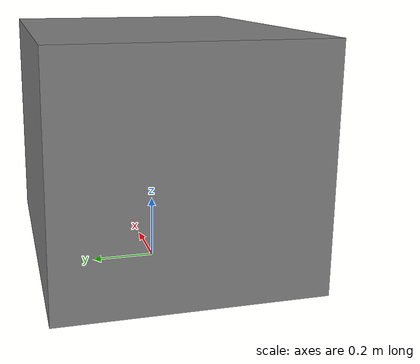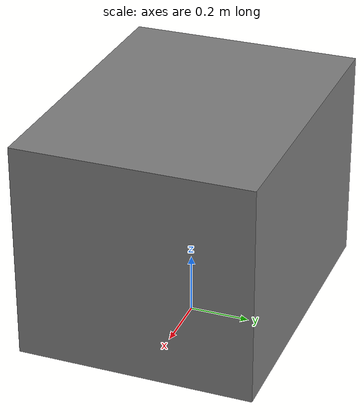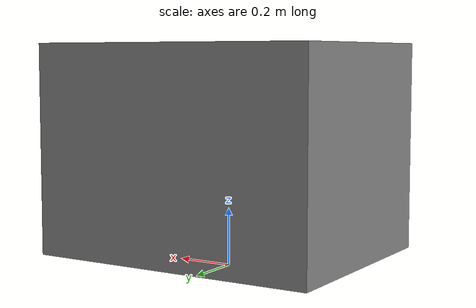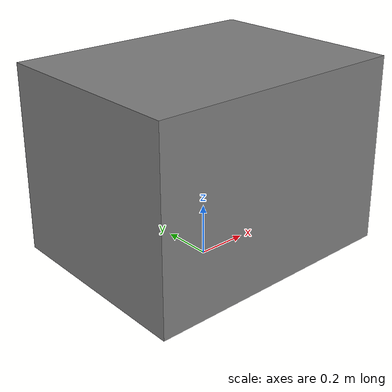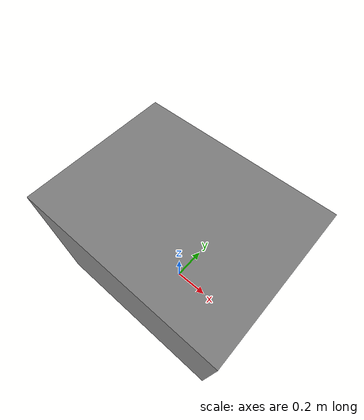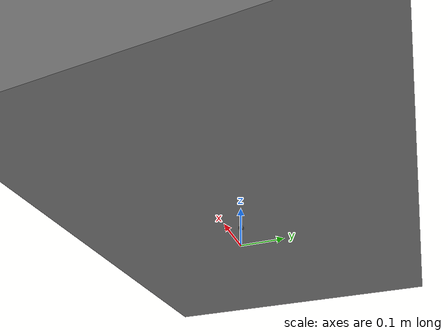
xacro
<?xml version="1.0"?>
<robot xmlns:xacro="http://www.ros.org/wiki/xacro" name="tracked_robot">

  <!-- Robot dimensions properties -->
  <xacro:property name="chassis_width" value="0.78" />   <!-- 780mm -->
  <xacro:property name="chassis_length" value="1.015" /> <!-- 1015mm -->
  <xacro:property name="chassis_height" value="0.72" />  <!-- 720mm -->
  <xacro:property name="ground_clearance" value="0.05" /> <!-- 5cm ground clearance -->

  <!-- Material colors -->
  <material name="black">
    <color rgba="0.1 0.1 0.1 1.0"/>
  </material>

  <material name="grey">
    <color rgba="0.5 0.5 0.5 1.0"/>
  </material>

  <material name="blue">
    <color rgba="0.0 0.0 0.8 1.0"/>
  </material>

  <material name="green">
    <color rgba="0.0 0.8 0.0 1.0"/>
  </material>

  <!-- Base link (robot center) -->
  <link name="base_link">
    <visual>
      <origin xyz="0 0 0" rpy="0 0 0" />
      <geometry>
        <box size="0.01 0.01 0.01" />
      </geometry>
      <material name="black"/>
    </visual>
    <collision>
      <origin xyz="0 0 0" rpy="0 0 0" />
      <geometry>
        <box size="0.01 0.01 0.01" />
      </geometry>
    </collision>
    <inertial>
      <mass value="0.01" />
      <inertia ixx="0.0001" ixy="0.0" ixz="0.0" iyy="0.0001" iyz="0.0" izz="0.0001" />
    </inertial>
  </link>

  <!-- Robot Footprint -->
  <link name="base_footprint">
    <visual>
      <origin xyz="0 0 0" rpy="0 0 0" />
      <geometry>
        <box size="0.001 0.001 0.001" />
      </geometry>
      <material name="black" />
    </visual>
    <collision>
      <origin xyz="0 0 0" rpy="0 0 0" />
      <geometry>
        <box size="0.001 0.001 0.001" />
      </geometry>
    </collision>
    <inertial>
      <mass value="0.0001" />
      <inertia ixx="0.0001" ixy="0.0" ixz="0.0" iyy="0.0001" iyz="0.0" izz="0.0001" />
    </inertial>
  </link>

  <joint name="base_footprint_to_base_link" type="fixed">
    <parent link="base_footprint" />
    <child link="base_link" />
    <origin xyz="0 0 ${ground_clearance}" rpy="0 0 0" />
  </joint>

  <!-- Main chassis body -->
  <link name="chassis_link">
    <visual>
      <origin xyz="0 0 0" rpy="0 0 0"/>
      <geometry>
        <box size="${chassis_length} ${chassis_width} ${chassis_height}"/>
      </geometry>
      <material name="grey"/>
    </visual>
    <collision>
      <origin xyz="0 0 0" rpy="0 0 0"/>
      <geometry>
        <box size="${chassis_length} ${chassis_width} ${chassis_height}"/>
      </geometry>
    </collision>
    <inertial>
      <mass value="60.0"/>
      <inertia
        ixx="${60.0*(chassis_width*chassis_width+chassis_height*chassis_height)/12}"
        ixy="0"
        ixz="0"
        iyy="${60.0*(chassis_length*chassis_length+chassis_height*chassis_height)/12}"
        iyz="0"
        izz="${60.0*(chassis_length*chassis_length+chassis_width*chassis_width)/12}" />
    </inertial>
  </link>

  <joint name="chassis_joint" type="fixed">
    <parent link="base_link"/>
    <child link="chassis_link"/>
    <origin xyz="0 0 ${chassis_height/2}" rpy="0 0 0"/>
  </joint>

  <!-- Jetson Orin NX -->
  <link name="jetson_link">
    <visual>
      <origin xyz="0 0 0" rpy="0 0 0" />
      <geometry>
        <box size="0.12 0.18 0.03" />
      </geometry>
      <material name="green"/>
    </visual>
    <collision>
      <origin xyz="0 0 0" rpy="0 0 0" />
      <geometry>
        <box size="0.12 0.18 0.03" />
      </geometry>
    </collision>
    <inertial>
      <mass value="0.5" />
      <inertia ixx="0.001" ixy="0.0" ixz="0.0" iyy="0.001" iyz="0.0" izz="0.001" />
    </inertial>
  </link>

  <joint name="jetson_joint" type="fixed">
    <parent link="chassis_link" />
    <child link="jetson_link" />
    <origin xyz="0 0 ${chassis_height/2 - 0.05}" rpy="0 0 0" />
  </joint>

</robot>
